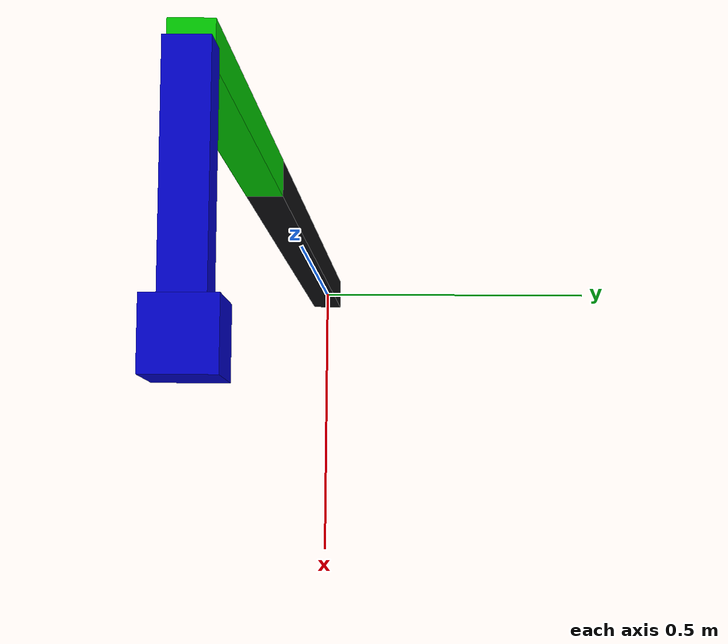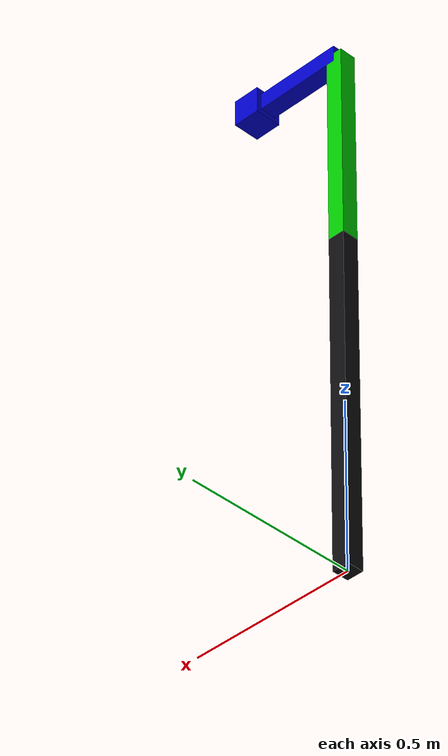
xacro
<?xml version="1.0"?>
<robot name="prarob_manipulator" xmlns:xacro="http://ros.org/wiki/xacro">
  <xacro:include filename="$(find robot_controll)/urdf/prarob_manipulator.xacro" />
  <xacro:include filename="$(find robot_controll)/urdf/prarob_manipulator.ros2_control.xacro" />

  <link name="world"/>

  <xacro:prarob_manipulator parent="world">
    <origin xyz="0 0 0" rpy="0 0 0" />
  </xacro:prarob_manipulator>

  <xacro:prarob_manipulator_ros2_control name="prarob_manipulator_ros2_control" />
</robot>

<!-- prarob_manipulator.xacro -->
<robot xmlns:xacro="http://ros.org/wiki/xacro">

<xacro:macro name="prarob_manipulator" params="parent *origin">
  <joint name="origin_to_link1" type="fixed">
    <xacro:insert_block name="origin" />
    <parent link="${parent}" />
    <child link="link1" />
    <origin xyz="0.0 0.0 0.0" rpy="0 0 0"/>
    <axis xyz="0 0 1" />
  </joint>

  <!-- Link 1 - base column -->
  <link name="link1">
    <visual>
      <origin xyz="0 0 0.5" rpy="0 0 0"/>
      <geometry>
        <box size="0.05 0.05 1.0"/>
      </geometry>
      <material name="link1_mat">
        <color rgba="0.054901960784313725 0.054901960784313725 0.06274509803921569 1.0"/>
      </material>
    </visual>
    <collision>
      <origin xyz="0 0 0.5" rpy="0 0 0"/>
      <geometry>
        <box size="0.05 0.05 1.0"/>
      </geometry>
    </collision>
    <inertial>
      <origin xyz="0 0 0.5" rpy="0 0 0"/>
      <mass value="0.5"/>
      <inertia ixx="0.042" ixy="0" ixz="0"
               iyy="0.042" iyz="0"
               izz="0.0002"/>
    </inertial>
  </link>

  <!-- Joint 1 — base yaw -->
  <joint name="joint1" type="revolute">
    <parent link="link1"/>
    <child link="link2"/>
    <origin xyz="0.0 0.0 1.0" rpy="0 0 0"/>
    <axis xyz="0 0 1"/>
    <limit velocity="10.0" effort="1" lower="-2.82743338823" upper="2.82743338823"/>
  </joint>

  <!-- Link 2 — upper arm -->
  <link name="link2">
    <visual>
      <origin xyz="0 0 0.3" rpy="0 0 0"/>
      <geometry>
        <box size="0.05 0.05 0.6"/>
      </geometry>
      <material name="link2_mat">
        <color rgba="0.0 0.8 0.0 1.0"/>
      </material>
    </visual>
    <collision>
      <origin xyz="0 0 0.3" rpy="0 0 0"/>
      <geometry>
        <box size="0.05 0.05 0.6"/>
      </geometry>
    </collision>
    <inertial>
      <origin xyz="0 0 0.3" rpy="0 0 0"/>
      <mass value="0.3"/>
      <inertia ixx="0.009" ixy="0" ixz="0"
               iyy="0.009" iyz="0"
               izz="0.0001"/>
    </inertial>
  </link>

  <!-- Joint 2 — shoulder pitch -->
  <joint name="joint2" type="revolute">
    <parent link="link2"/>
    <child link="link3"/>
    <origin xyz="0.0 0.0 0.60" rpy="0 0 0"/>
    <axis xyz="1 0 0"/>
    <limit velocity="10.0" effort="1" lower="-2.82743338823" upper="2.82743338823"/>
  </joint>

  <!-- Link 3 — forearm -->
  <link name="link3">
    <visual>
      <origin xyz="0.15 0 0" rpy="0 0 0"/>
      <geometry>
        <box size="0.3 0.05 0.05"/>
      </geometry>
      <material name="link3_mat">
        <color rgba="0.0 0.0 0.8 1.0"/>
      </material>
    </visual>
    <collision>
      <origin xyz="0.15 0 0" rpy="0 0 0"/>
      <geometry>
        <box size="0.3 0.05 0.05"/>
      </geometry>
    </collision>
    <inertial>
      <origin xyz="0.15 0 0" rpy="0 0 0"/>
      <mass value="0.15"/>
      <inertia ixx="0.00003" ixy="0" ixz="0"
               iyy="0.00115" iyz="0"
               izz="0.00115"/>
    </inertial>
  </link>

  <!-- Joint 3 — wrist -->
  <joint name="joint3" type="revolute">
    <parent link="link3"/>
    <child link="link_tool"/>
    <origin xyz="0.3 0.0 0.0" rpy="0 0 0"/>
    <axis xyz="1 0 0"/>
    <limit velocity="10.0" effort="1" lower="-2.82743338823" upper="2.82743338823"/>
  </joint>

  <!-- link_tool — end effector -->
  <link name="link_tool">
    <visual>
      <origin xyz="0 0 0" rpy="0 0 0"/>
      <geometry>
        <box size="0.08 0.08 0.08"/>
      </geometry>
      <material name="tool_mat">
        <color rgba="0.0 0.0 0.8 1.0"/>
      </material>
    </visual>
    <collision>
      <origin xyz="0 0 0" rpy="0 0 0"/>
      <geometry>
        <box size="0.08 0.08 0.08"/>
      </geometry>
    </collision>
    <inertial>
      <origin xyz="0 0 0" rpy="0 0 0"/>
      <mass value="0.05"/>
      <inertia ixx="0.00003" ixy="0" ixz="0"
               iyy="0.00003" iyz="0"
               izz="0.00003"/>
    </inertial>
  </link>

</xacro:macro>
</robot>
